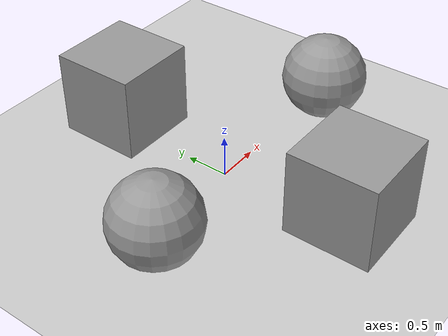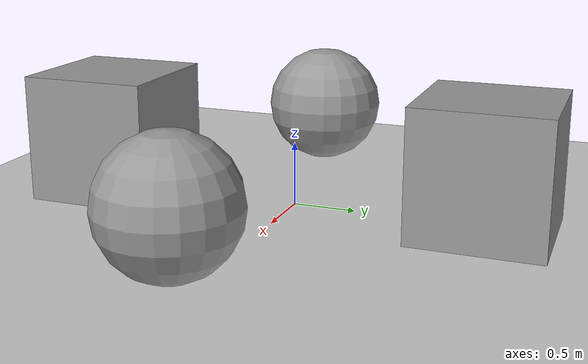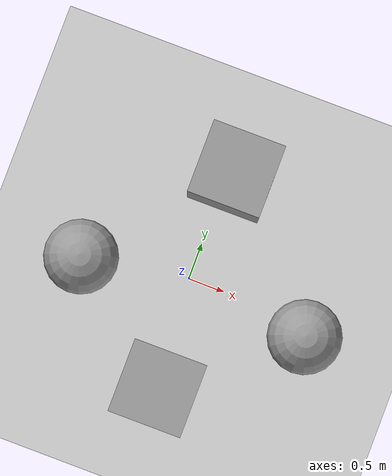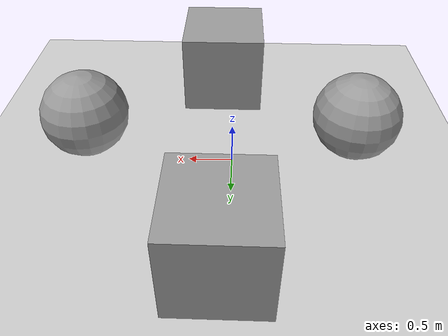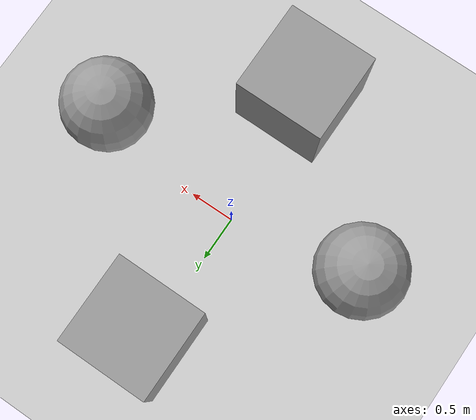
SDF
<sdf version="1.6">
 <world name="default">
  <light name="sun" type="directional">
   <pose>0 0 10 0 -0 0</pose>
   <diffuse>0.8 0.8 0.8 1</diffuse>
   <specular>0.1 0.1 0.1 1</specular>
   <attenuation>
    <range>1000</range>
    <constant>0.9</constant>
    <linear>0.01</linear>
    <quadratic>0.001</quadratic>
   </attenuation>
   <direction>-0.5 0.5 -1</direction>
  </light>
  <model name="ground_plane">
   <static>1</static>
   <link name="link">
    <collision name="collision">
     <geometry><plane><normal>0 0 1</normal><size>100 100</size></plane></geometry>
     <surface><friction><ode><mu>100</mu><mu2>50</mu2></ode></friction></surface>
    </collision>
    <visual name="visual">
     <cast_shadows>0</cast_shadows>
     <geometry><plane><normal>0 0 1</normal><size>100 100</size></plane></geometry>
     <material>
      <script><uri>file://media/materials/scripts/gazebo.material</uri><name>Gazebo/Grey</name></script>
     </material>
    </visual>
   </link>
  </model>
  <physics name="default_physics" default="0" type="ode">
   <max_step_size>0.01</max_step_size>
   <real_time_factor>1</real_time_factor>
   <real_time_update_rate>100</real_time_update_rate>
  </physics>
  <gravity>0 0 -9.8</gravity>
  <magnetic_field>6e-06 2.3e-05 -4.2e-05</magnetic_field>
  <atmosphere type="adiabatic"/>
  <scene><ambient>0.4 0.4 0.4 1</ambient><background>0.7 0.7 0.7 1</background><shadows>1</shadows></scene>
  <spherical_coordinates>
   <surface_model>EARTH_WGS84</surface_model>
   <latitude_deg>0</latitude_deg>
   <longitude_deg>0</longitude_deg>
   <elevation>0</elevation>
   <heading_deg>0</heading_deg>
  </spherical_coordinates>
  <model name="unit_sphere">
   <pose>-1.42363 -0.244936 0.5 0 -0 0</pose>
   <link name="link">
    <inertial>
     <mass>1</mass>
     <inertia><ixx>0.1</ixx><ixy>0</ixy><ixz>0</ixz><iyy>0.1</iyy><iyz>0</iyz><izz>0.1</izz></inertia>
    </inertial>
    <collision name="collision"><geometry><sphere><radius>0.5</radius></sphere></geometry></collision>
    <visual name="visual">
     <geometry><sphere><radius>0.5</radius></sphere></geometry>
     <material>
      <script><name>Gazebo/Grey</name><uri>file://media/materials/scripts/gazebo.material</uri></script>
     </material>
    </visual>
   </link>
  </model>
  <model name="unit_sphere_2">
   <pose>1.70523 -0.200875 0.5 0 -0 0</pose>
   <link name="link">
    <inertial>
     <mass>1</mass>
     <inertia><ixx>0.1</ixx><ixy>0</ixy><ixz>0</ixz><iyy>0.1</iyy><iyz>0</iyz><izz>0.1</izz></inertia>
    </inertial>
    <collision name="collision"><geometry><sphere><radius>0.5</radius></sphere></geometry></collision>
    <visual name="visual">
     <geometry><sphere><radius>0.5</radius></sphere></geometry>
     <material>
      <script><name>Gazebo/Grey</name><uri>file://media/materials/scripts/gazebo.material</uri></script>
     </material>
    </visual>
   </link>
  </model>
  <model name="unit_box">
   <pose>0.093739 1.52026 0.49907 -0.0001 0 0</pose>
   <link name="link">
    <inertial>
     <mass>1</mass>
     <inertia>
      <ixx>0.166667</ixx>
      <ixy>0</ixy>
      <ixz>0</ixz>
      <iyy>0.166667</iyy>
      <iyz>0</iyz>
      <izz>0.166667</izz>
     </inertia>
    </inertial>
    <collision name="collision"><geometry><box><size>1 1 1</size></box></geometry></collision>
    <visual name="visual">
     <geometry><box><size>1 1 1</size></box></geometry>
     <material>
      <script><name>Gazebo/Grey</name><uri>file://media/materials/scripts/gazebo.material</uri></script>
     </material>
    </visual>
   </link>
  </model>
  <model name="unit_box_0">
   <pose>0.137504 -1.51021 0.499798 0.000404 1e-06 0</pose>
   <link name="link">
    <inertial>
     <mass>1</mass>
     <inertia>
      <ixx>0.166667</ixx>
      <ixy>0</ixy>
      <ixz>0</ixz>
      <iyy>0.166667</iyy>
      <iyz>0</iyz>
      <izz>0.166667</izz>
     </inertia>
    </inertial>
    <collision name="collision"><geometry><box><size>1 1 1</size></box></geometry></collision>
    <visual name="visual">
     <geometry><box><size>1 1 1</size></box></geometry>
     <material>
      <script><name>Gazebo/Grey</name><uri>file://media/materials/scripts/gazebo.material</uri></script>
     </material>
    </visual>
   </link>
  </model>
 </world>
</sdf>
